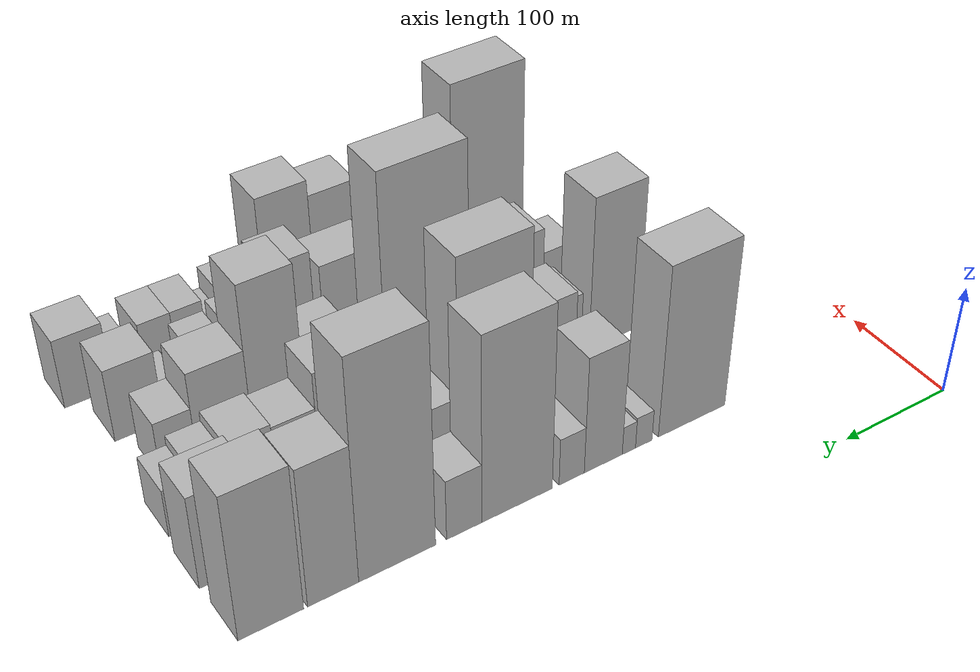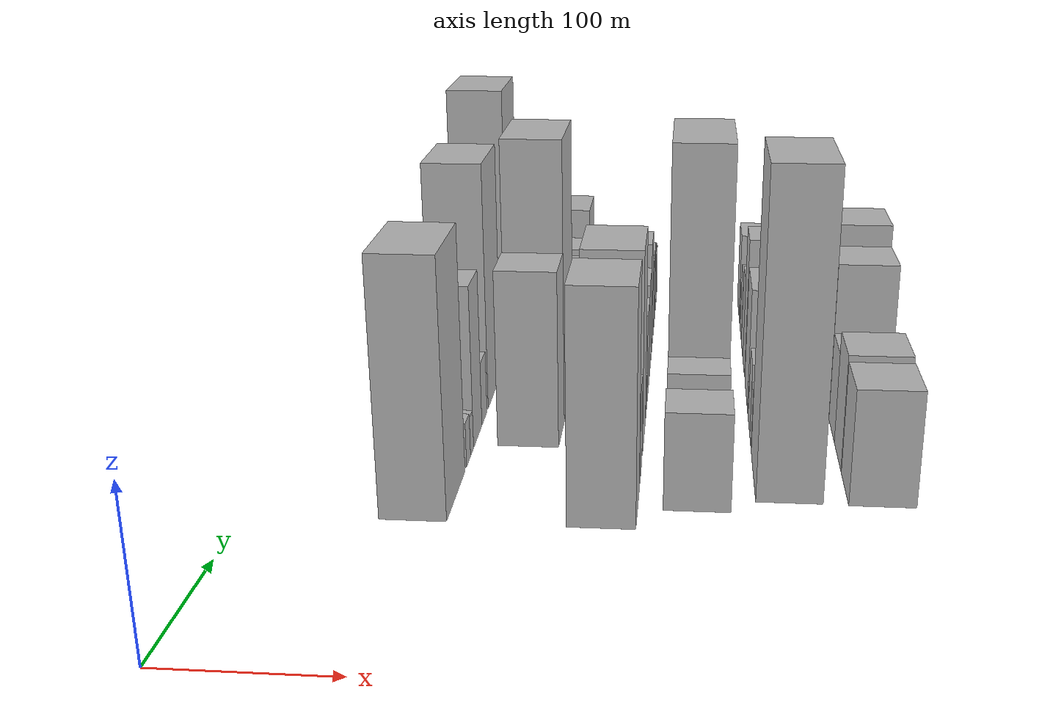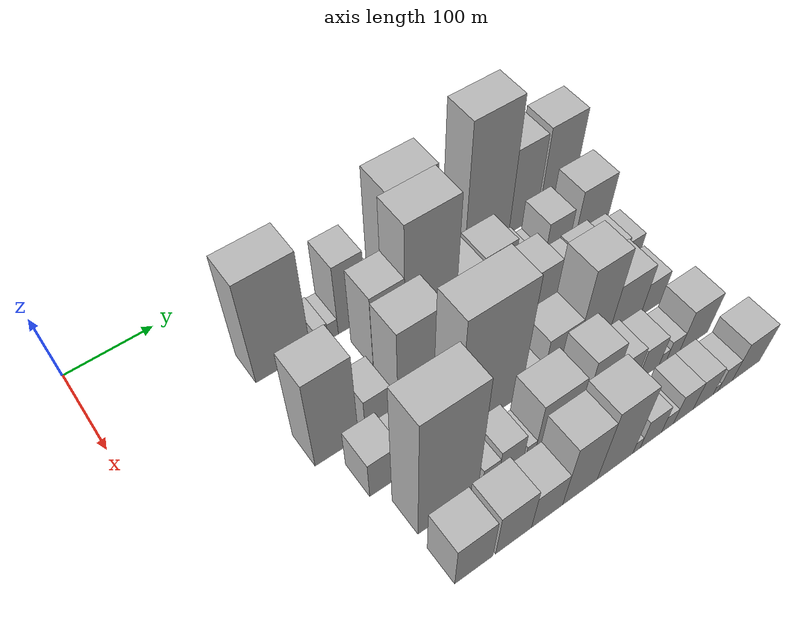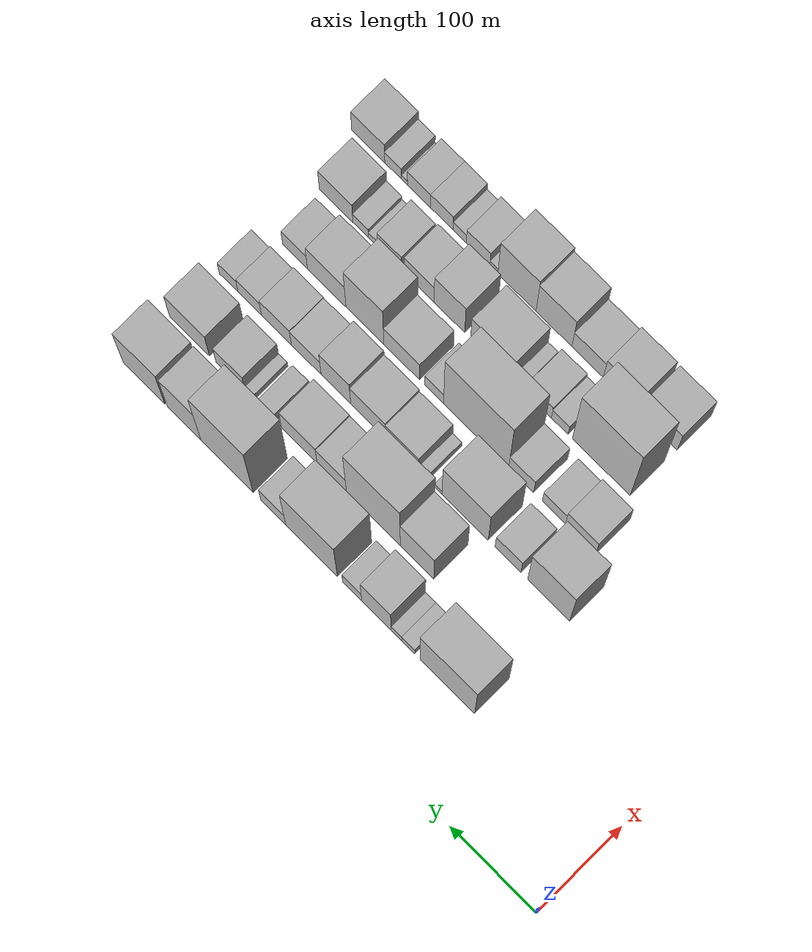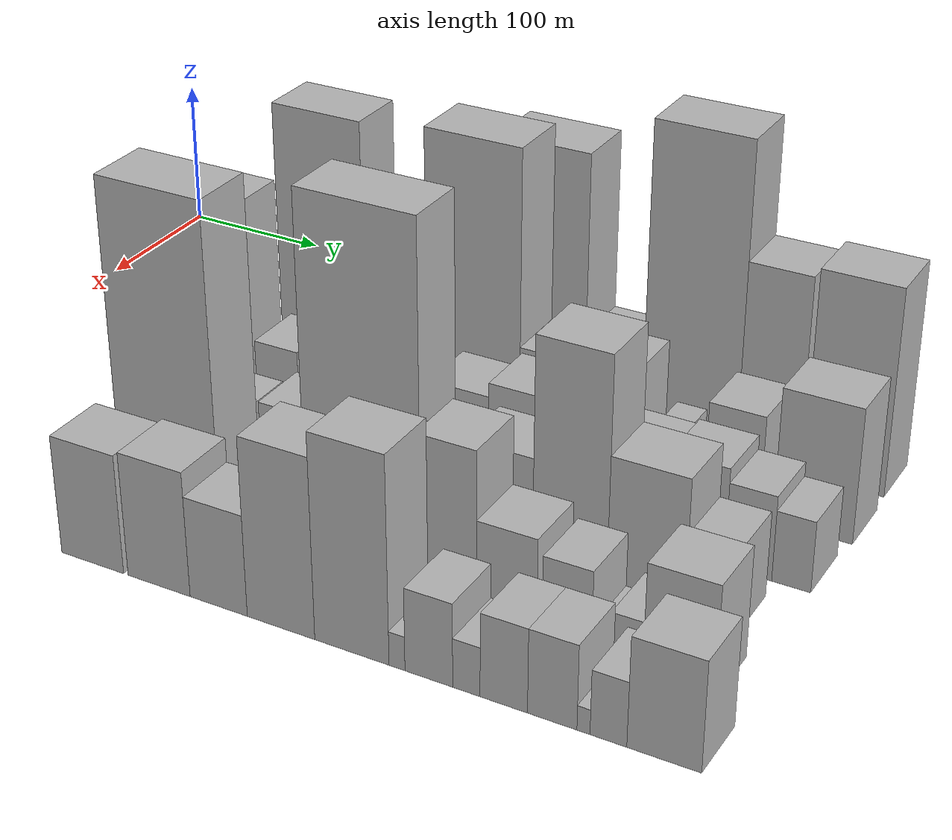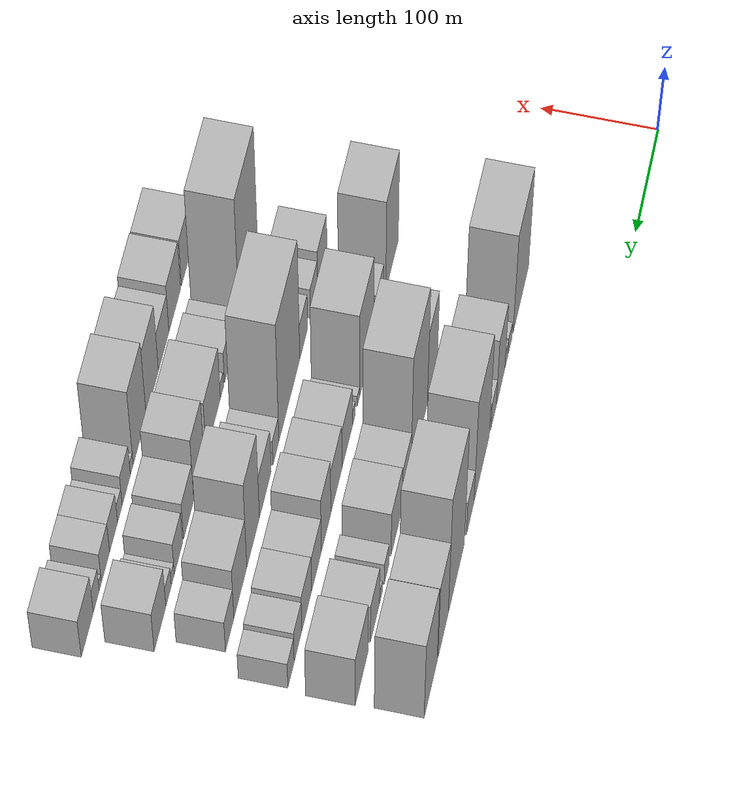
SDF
<sdf version="1.6">
 <world name="default">
  <model name="building_28">
   <static>1</static>
   <pose>100.0000 183.2015 0 0.000000 0.000000 0.000000</pose>
   <link name="link">
    <pose>0 0 81.00 0 0 0</pose>
    <collision name="collision"><geometry><box><size>40.0000 63.8877 162.0000</size></box></geometry></collision>
    <visual name="visual">
     <cast_shadows>0</cast_shadows>
     <geometry><box><size>40.0000 63.8877 162.0000</size></box></geometry>
     <material>
      <script>
       <uri>model://HANNAS_wall/materials/scripts</uri>
       <uri>model://HANNAS_wall/materials/textures</uri>
       <name>vrc/HANNAS_wall</name>
      </script>
     </material>
    </visual>
   </link>
  </model>
  <model name="building_29">
   <static>1</static>
   <pose>100.0000 228.8437 0 0.000000 0.000000 0.000000</pose>
   <link name="link">
    <pose>0 0 15.00 0 0 0</pose>
    <collision name="collision"><geometry><box><size>40.0000 15.3966 30.0000</size></box></geometry></collision>
    <visual name="visual">
     <cast_shadows>0</cast_shadows>
     <geometry><box><size>40.0000 15.3966 30.0000</size></box></geometry>
     <material>
      <script>
       <uri>model://HANNAS_wall/materials/scripts</uri>
       <uri>model://HANNAS_wall/materials/textures</uri>
       <name>vrc/HANNAS_wall</name>
      </script>
     </material>
    </visual>
   </link>
  </model>
  <model name="building_30">
   <static>1</static>
   <pose>100.0000 242.6706 0 0.000000 0.000000 0.000000</pose>
   <link name="link">
    <pose>0 0 13.50 0 0 0</pose>
    <collision name="collision"><geometry><box><size>40.0000 12.2572 27.0000</size></box></geometry></collision>
    <visual name="visual">
     <cast_shadows>0</cast_shadows>
     <geometry><box><size>40.0000 12.2572 27.0000</size></box></geometry>
     <material>
      <script>
       <uri>model://HANNAS_wall/materials/scripts</uri>
       <uri>model://HANNAS_wall/materials/textures</uri>
       <name>vrc/HANNAS_wall</name>
      </script>
     </material>
    </visual>
   </link>
  </model>
  <model name="building_31">
   <static>1</static>
   <pose>100.0000 266.0972 0 0.000000 0.000000 0.000000</pose>
   <link name="link">
    <pose>0 0 55.50 0 0 0</pose>
    <collision name="collision"><geometry><box><size>40.0000 34.5961 111.0000</size></box></geometry></collision>
    <visual name="visual">
     <cast_shadows>0</cast_shadows>
     <geometry><box><size>40.0000 34.5961 111.0000</size></box></geometry>
     <material>
      <script>
       <uri>model://HANNAS_wall/materials/scripts</uri>
       <uri>model://HANNAS_wall/materials/textures</uri>
       <name>vrc/HANNAS_wall</name>
      </script>
     </material>
    </visual>
   </link>
  </model>
  <model name="building_32">
   <static>1</static>
   <pose>100.0000 294.6586 0 0.000000 0.000000 0.000000</pose>
   <link name="link">
    <pose>0 0 22.50 0 0 0</pose>
    <collision name="collision"><geometry><box><size>40.0000 22.5267 45.0000</size></box></geometry></collision>
    <visual name="visual">
     <cast_shadows>0</cast_shadows>
     <geometry><box><size>40.0000 22.5267 45.0000</size></box></geometry>
     <material>
      <script>
       <uri>model://HANNAS_wall/materials/scripts</uri>
       <uri>model://HANNAS_wall/materials/textures</uri>
       <name>vrc/HANNAS_wall</name>
      </script>
     </material>
    </visual>
   </link>
  </model>
  <model name="building_33">
   <static>1</static>
   <pose>100.0000 342.3080 0 0.000000 0.000000 0.000000</pose>
   <link name="link">
    <pose>0 0 87.00 0 0 0</pose>
    <collision name="collision"><geometry><box><size>40.0000 60.7721 174.0000</size></box></geometry></collision>
    <visual name="visual">
     <cast_shadows>0</cast_shadows>
     <geometry><box><size>40.0000 60.7721 174.0000</size></box></geometry>
     <material>
      <script>
       <uri>model://HANNAS_wall/materials/scripts</uri>
       <uri>model://HANNAS_wall/materials/textures</uri>
       <name>vrc/HANNAS_wall</name>
      </script>
     </material>
    </visual>
   </link>
  </model>
  <model name="building_34">
   <static>1</static>
   <pose>100.0000 387.5385 0 0.000000 0.000000 0.000000</pose>
   <link name="link">
    <pose>0 0 28.50 0 0 0</pose>
    <collision name="collision"><geometry><box><size>40.0000 29.6889 57.0000</size></box></geometry></collision>
    <visual name="visual">
     <cast_shadows>0</cast_shadows>
     <geometry><box><size>40.0000 29.6889 57.0000</size></box></geometry>
     <material>
      <script>
       <uri>model://HANNAS_wall/materials/scripts</uri>
       <uri>model://HANNAS_wall/materials/textures</uri>
       <name>vrc/HANNAS_wall</name>
      </script>
     </material>
    </visual>
   </link>
  </model>
  <model name="building_35">
   <static>1</static>
   <pose>100.0000 442.3553 0 0.000000 0.000000 0.000000</pose>
   <link name="link">
    <pose>0 0 102.00 0 0 0</pose>
    <collision name="collision"><geometry><box><size>40.0000 61.9446 204.0000</size></box></geometry></collision>
    <visual name="visual">
     <cast_shadows>0</cast_shadows>
     <geometry><box><size>40.0000 61.9446 204.0000</size></box></geometry>
     <material>
      <script>
       <uri>model://HANNAS_wall/materials/scripts</uri>
       <uri>model://HANNAS_wall/materials/textures</uri>
       <name>vrc/HANNAS_wall</name>
      </script>
     </material>
    </visual>
   </link>
  </model>
  <model name="building_36">
   <static>1</static>
   <pose>100.0000 493.2041 0 0.000000 0.000000 0.000000</pose>
   <link name="link">
    <pose>0 0 64.50 0 0 0</pose>
    <collision name="collision"><geometry><box><size>40.0000 39.7531 129.0000</size></box></geometry></collision>
    <visual name="visual">
     <cast_shadows>0</cast_shadows>
     <geometry><box><size>40.0000 39.7531 129.0000</size></box></geometry>
     <material>
      <script>
       <uri>model://HANNAS_wall/materials/scripts</uri>
       <uri>model://HANNAS_wall/materials/textures</uri>
       <name>vrc/HANNAS_wall</name>
      </script>
     </material>
    </visual>
   </link>
  </model>
  <model name="building_37">
   <static>1</static>
   <pose>100.0000 540.7770 0 0.000000 0.000000 0.000000</pose>
   <link name="link">
    <pose>0 0 67.50 0 0 0</pose>
    <collision name="collision"><geometry><box><size>40.0000 49.3926 135.0000</size></box></geometry></collision>
    <visual name="visual">
     <cast_shadows>0</cast_shadows>
     <geometry><box><size>40.0000 49.3926 135.0000</size></box></geometry>
     <material>
      <script>
       <uri>model://HANNAS_wall/materials/scripts</uri>
       <uri>model://HANNAS_wall/materials/textures</uri>
       <name>vrc/HANNAS_wall</name>
      </script>
     </material>
    </visual>
   </link>
  </model>
  <model name="building_87">
   <static>1</static>
   <pose>155.0000 273.7556 0 0.000000 0.000000 0.000000</pose>
   <link name="link">
    <pose>0 0 60.00 0 0 0</pose>
    <collision name="collision"><geometry><box><size>40.0000 39.2226 120.0000</size></box></geometry></collision>
    <visual name="visual">
     <cast_shadows>0</cast_shadows>
     <geometry><box><size>40.0000 39.2226 120.0000</size></box></geometry>
     <material>
      <script>
       <uri>model://HANNAS_wall/materials/scripts</uri>
       <uri>model://HANNAS_wall/materials/textures</uri>
       <name>vrc/HANNAS_wall</name>
      </script>
     </material>
    </visual>
   </link>
  </model>
  <model name="building_88">
   <static>1</static>
   <pose>155.0000 325.0575 0 0.000000 0.000000 0.000000</pose>
   <link name="link">
    <pose>0 0 97.50 0 0 0</pose>
    <collision name="collision"><geometry><box><size>40.0000 63.3811 195.0000</size></box></geometry></collision>
    <visual name="visual">
     <cast_shadows>0</cast_shadows>
     <geometry><box><size>40.0000 63.3811 195.0000</size></box></geometry>
     <material>
      <script>
       <uri>model://HANNAS_wall/materials/scripts</uri>
       <uri>model://HANNAS_wall/materials/textures</uri>
       <name>vrc/HANNAS_wall</name>
      </script>
     </material>
    </visual>
   </link>
  </model>
  <model name="building_89">
   <static>1</static>
   <pose>155.0000 374.1225 0 0.000000 0.000000 0.000000</pose>
   <link name="link">
    <pose>0 0 34.50 0 0 0</pose>
    <collision name="collision"><geometry><box><size>40.0000 34.7489 69.0000</size></box></geometry></collision>
    <visual name="visual">
     <cast_shadows>0</cast_shadows>
     <geometry><box><size>40.0000 34.7489 69.0000</size></box></geometry>
     <material>
      <script>
       <uri>model://HANNAS_wall/materials/scripts</uri>
       <uri>model://HANNAS_wall/materials/textures</uri>
       <name>vrc/HANNAS_wall</name>
      </script>
     </material>
    </visual>
   </link>
  </model>
  <model name="building_90">
   <static>1</static>
   <pose>155.0000 412.5761 0 0.000000 0.000000 0.000000</pose>
   <link name="link">
    <pose>0 0 37.50 0 0 0</pose>
    <collision name="collision"><geometry><box><size>40.0000 42.1584 75.0000</size></box></geometry></collision>
    <visual name="visual">
     <cast_shadows>0</cast_shadows>
     <geometry><box><size>40.0000 42.1584 75.0000</size></box></geometry>
     <material>
      <script>
       <uri>model://HANNAS_wall/materials/scripts</uri>
       <uri>model://HANNAS_wall/materials/textures</uri>
       <name>vrc/HANNAS_wall</name>
      </script>
     </material>
    </visual>
   </link>
  </model>
  <model name="building_91">
   <static>1</static>
   <pose>155.0000 450.0210 0 0.000000 0.000000 0.000000</pose>
   <link name="link">
    <pose>0 0 18.00 0 0 0</pose>
    <collision name="collision"><geometry><box><size>40.0000 18.7314 36.0000</size></box></geometry></collision>
    <visual name="visual">
     <cast_shadows>0</cast_shadows>
     <geometry><box><size>40.0000 18.7314 36.0000</size></box></geometry>
     <material>
      <script>
       <uri>model://HANNAS_wall/materials/scripts</uri>
       <uri>model://HANNAS_wall/materials/textures</uri>
       <name>vrc/HANNAS_wall</name>
      </script>
     </material>
    </visual>
   </link>
  </model>
  <model name="building_92">
   <static>1</static>
   <pose>155.0000 471.5503 0 0.000000 0.000000 0.000000</pose>
   <link name="link">
    <pose>0 0 10.50 0 0 0</pose>
    <collision name="collision"><geometry><box><size>40.0000 10.3272 21.0000</size></box></geometry></collision>
    <visual name="visual">
     <cast_shadows>0</cast_shadows>
     <geometry><box><size>40.0000 10.3272 21.0000</size></box></geometry>
     <material>
      <script>
       <uri>model://HANNAS_wall/materials/scripts</uri>
       <uri>model://HANNAS_wall/materials/textures</uri>
       <name>vrc/HANNAS_wall</name>
      </script>
     </material>
    </visual>
   </link>
  </model>
  <model name="building_93">
   <static>1</static>
   <pose>155.0000 493.9384 0 0.000000 0.000000 0.000000</pose>
   <link name="link">
    <pose>0 0 33.00 0 0 0</pose>
    <collision name="collision"><geometry><box><size>40.0000 34.4488 66.0000</size></box></geometry></collision>
    <visual name="visual">
     <cast_shadows>0</cast_shadows>
     <geometry><box><size>40.0000 34.4488 66.0000</size></box></geometry>
     <material>
      <script>
       <uri>model://HANNAS_wall/materials/scripts</uri>
       <uri>model://HANNAS_wall/materials/textures</uri>
       <name>vrc/HANNAS_wall</name>
      </script>
     </material>
    </visual>
   </link>
  </model>
  <model name="building_94">
   <static>1</static>
   <pose>155.0000 542.9201 0 0.000000 0.000000 0.000000</pose>
   <link name="link">
    <pose>0 0 43.50 0 0 0</pose>
    <collision name="collision"><geometry><box><size>40.0000 47.5147 87.0000</size></box></geometry></collision>
    <visual name="visual">
     <cast_shadows>0</cast_shadows>
     <geometry><box><size>40.0000 47.5147 87.0000</size></box></geometry>
     <material>
      <script>
       <uri>model://HANNAS_wall/materials/scripts</uri>
       <uri>model://HANNAS_wall/materials/textures</uri>
       <name>vrc/HANNAS_wall</name>
      </script>
     </material>
    </visual>
   </link>
  </model>
  <model name="building_135">
   <static>1</static>
   <pose>210.0000 174.5492 0 0.000000 0.000000 0.000000</pose>
   <link name="link">
    <pose>0 0 73.50 0 0 0</pose>
    <collision name="collision"><geometry><box><size>40.0000 49.1016 147.0000</size></box></geometry></collision>
    <visual name="visual">
     <cast_shadows>0</cast_shadows>
     <geometry><box><size>40.0000 49.1016 147.0000</size></box></geometry>
     <material>
      <script>
       <uri>model://HANNAS_wall/materials/scripts</uri>
       <uri>model://HANNAS_wall/materials/textures</uri>
       <name>vrc/HANNAS_wall</name>
      </script>
     </material>
    </visual>
   </link>
  </model>
  <model name="building_136">
   <static>1</static>
   <pose>210.0000 222.1670 0 0.000000 0.000000 0.000000</pose>
   <link name="link">
    <pose>0 0 30.00 0 0 0</pose>
    <collision name="collision"><geometry><box><size>40.0000 30.1342 60.0000</size></box></geometry></collision>
    <visual name="visual">
     <cast_shadows>0</cast_shadows>
     <geometry><box><size>40.0000 30.1342 60.0000</size></box></geometry>
     <material>
      <script>
       <uri>model://HANNAS_wall/materials/scripts</uri>
       <uri>model://HANNAS_wall/materials/textures</uri>
       <name>vrc/HANNAS_wall</name>
      </script>
     </material>
    </visual>
   </link>
  </model>
  <model name="building_137">
   <static>1</static>
   <pose>210.0000 272.4114 0 0.000000 0.000000 0.000000</pose>
   <link name="link">
    <pose>0 0 69.00 0 0 0</pose>
    <collision name="collision"><geometry><box><size>40.0000 54.3545 138.0000</size></box></geometry></collision>
    <visual name="visual">
     <cast_shadows>0</cast_shadows>
     <geometry><box><size>40.0000 54.3545 138.0000</size></box></geometry>
     <material>
      <script>
       <uri>model://HANNAS_wall/materials/scripts</uri>
       <uri>model://HANNAS_wall/materials/textures</uri>
       <name>vrc/HANNAS_wall</name>
      </script>
     </material>
    </visual>
   </link>
  </model>
  <model name="building_138">
   <static>1</static>
   <pose>210.0000 303.9661 0 0.000000 0.000000 0.000000</pose>
   <link name="link">
    <pose>0 0 9.00 0 0 0</pose>
    <collision name="collision"><geometry><box><size>40.0000 8.7550 18.0000</size></box></geometry></collision>
    <visual name="visual">
     <cast_shadows>0</cast_shadows>
     <geometry><box><size>40.0000 8.7550 18.0000</size></box></geometry>
     <material>
      <script>
       <uri>model://HANNAS_wall/materials/scripts</uri>
       <uri>model://HANNAS_wall/materials/textures</uri>
       <name>vrc/HANNAS_wall</name>
      </script>
     </material>
    </visual>
   </link>
  </model>
  <model name="building_139">
   <static>1</static>
   <pose>210.0000 321.7002 0 0.000000 0.000000 0.000000</pose>
   <link name="link">
    <pose>0 0 12.00 0 0 0</pose>
    <collision name="collision"><geometry><box><size>40.0000 10.7131 24.0000</size></box></geometry></collision>
    <visual name="visual">
     <cast_shadows>0</cast_shadows>
     <geometry><box><size>40.0000 10.7131 24.0000</size></box></geometry>
     <material>
      <script>
       <uri>model://HANNAS_wall/materials/scripts</uri>
       <uri>model://HANNAS_wall/materials/textures</uri>
       <name>vrc/HANNAS_wall</name>
      </script>
     </material>
    </visual>
   </link>
  </model>
  <model name="building_140">
   <static>1</static>
   <pose>210.0000 346.5450 0 0.000000 0.000000 0.000000</pose>
   <link name="link">
    <pose>0 0 33.00 0 0 0</pose>
    <collision name="collision"><geometry><box><size>40.0000 38.9765 66.0000</size></box></geometry></collision>
    <visual name="visual">
     <cast_shadows>0</cast_shadows>
     <geometry><box><size>40.0000 38.9765 66.0000</size></box></geometry>
     <material>
      <script>
       <uri>model://HANNAS_wall/materials/scripts</uri>
       <uri>model://HANNAS_wall/materials/textures</uri>
       <name>vrc/HANNAS_wall</name>
      </script>
     </material>
    </visual>
   </link>
  </model>
  <model name="building_141">
   <static>1</static>
   <pose>210.0000 386.6026 0 0.000000 0.000000 0.000000</pose>
   <link name="link">
    <pose>0 0 37.50 0 0 0</pose>
    <collision name="collision"><geometry><box><size>40.0000 41.1388 75.0000</size></box></geometry></collision>
    <visual name="visual">
     <cast_shadows>0</cast_shadows>
     <geometry><box><size>40.0000 41.1388 75.0000</size></box></geometry>
     <material>
      <script>
       <uri>model://HANNAS_wall/materials/scripts</uri>
       <uri>model://HANNAS_wall/materials/textures</uri>
       <name>vrc/HANNAS_wall</name>
      </script>
     </material>
    </visual>
   </link>
  </model>
  <model name="building_142">
   <static>1</static>
   <pose>210.0000 424.6986 0 0.000000 0.000000 0.000000</pose>
   <link name="link">
    <pose>0 0 46.50 0 0 0</pose>
    <collision name="collision"><geometry><box><size>40.0000 35.0533 93.0000</size></box></geometry></collision>
    <visual name="visual">
     <cast_shadows>0</cast_shadows>
     <geometry><box><size>40.0000 35.0533 93.0000</size></box></geometry>
     <material>
      <script>
       <uri>model://HANNAS_wall/materials/scripts</uri>
       <uri>model://HANNAS_wall/materials/textures</uri>
       <name>vrc/HANNAS_wall</name>
      </script>
     </material>
    </visual>
   </link>
  </model>
  <model name="building_143">
   <static>1</static>
   <pose>210.0000 459.9254 0 0.000000 0.000000 0.000000</pose>
   <link name="link">
    <pose>0 0 30.00 0 0 0</pose>
    <collision name="collision"><geometry><box><size>40.0000 35.4003 60.0000</size></box></geometry></collision>
    <visual name="visual">
     <cast_shadows>0</cast_shadows>
     <geometry><box><size>40.0000 35.4003 60.0000</size></box></geometry>
     <material>
      <script>
       <uri>model://HANNAS_wall/materials/scripts</uri>
       <uri>model://HANNAS_wall/materials/textures</uri>
       <name>vrc/HANNAS_wall</name>
      </script>
     </material>
    </visual>
   </link>
  </model>
  <model name="building_144">
   <static>1</static>
   <pose>210.0000 495.3874 0 0.000000 0.000000 0.000000</pose>
   <link name="link">
    <pose>0 0 31.50 0 0 0</pose>
    <collision name="collision"><geometry><box><size>40.0000 35.5236 63.0000</size></box></geometry></collision>
    <visual name="visual">
     <cast_shadows>0</cast_shadows>
     <geometry><box><size>40.0000 35.5236 63.0000</size></box></geometry>
     <material>
      <script>
       <uri>model://HANNAS_wall/materials/scripts</uri>
       <uri>model://HANNAS_wall/materials/textures</uri>
       <name>vrc/HANNAS_wall</name>
      </script>
     </material>
    </visual>
   </link>
  </model>
  <model name="building_145">
   <static>1</static>
   <pose>210.0000 527.0077 0 0.000000 0.000000 0.000000</pose>
   <link name="link">
    <pose>0 0 27.00 0 0 0</pose>
    <collision name="collision"><geometry><box><size>40.0000 27.7169 54.0000</size></box></geometry></collision>
    <visual name="visual">
     <cast_shadows>0</cast_shadows>
     <geometry><box><size>40.0000 27.7169 54.0000</size></box></geometry>
     <material>
      <script>
       <uri>model://HANNAS_wall/materials/scripts</uri>
       <uri>model://HANNAS_wall/materials/textures</uri>
       <name>vrc/HANNAS_wall</name>
      </script>
     </material>
    </visual>
   </link>
  </model>
  <model name="building_146">
   <static>1</static>
   <pose>210.0000 552.1221 0 0.000000 0.000000 0.000000</pose>
   <link name="link">
    <pose>0 0 22.50 0 0 0</pose>
    <collision name="collision"><geometry><box><size>40.0000 22.5119 45.0000</size></box></geometry></collision>
    <visual name="visual">
     <cast_shadows>0</cast_shadows>
     <geometry><box><size>40.0000 22.5119 45.0000</size></box></geometry>
     <material>
      <script>
       <uri>model://HANNAS_wall/materials/scripts</uri>
       <uri>model://HANNAS_wall/materials/textures</uri>
       <name>vrc/HANNAS_wall</name>
      </script>
     </material>
    </visual>
   </link>
  </model>
  <model name="building_190">
   <static>1</static>
   <pose>265.0000 191.7337 0 0.000000 0.000000 0.000000</pose>
   <link name="link">
    <pose>0 0 31.50 0 0 0</pose>
    <collision name="collision"><geometry><box><size>40.0000 35.4533 63.0000</size></box></geometry></collision>
    <visual name="visual">
     <cast_shadows>0</cast_shadows>
     <geometry><box><size>40.0000 35.4533 63.0000</size></box></geometry>
     <material>
      <script>
       <uri>model://HANNAS_wall/materials/scripts</uri>
       <uri>model://HANNAS_wall/materials/textures</uri>
       <name>vrc/HANNAS_wall</name>
      </script>
     </material>
    </visual>
   </link>
  </model>
  <model name="building_191">
   <static>1</static>
   <pose>265.0000 223.1276 0 0.000000 0.000000 0.000000</pose>
   <link name="link">
    <pose>0 0 24.00 0 0 0</pose>
    <collision name="collision"><geometry><box><size>40.0000 27.3347 48.0000</size></box></geometry></collision>
    <visual name="visual">
     <cast_shadows>0</cast_shadows>
     <geometry><box><size>40.0000 27.3347 48.0000</size></box></geometry>
     <material>
      <script>
       <uri>model://HANNAS_wall/materials/scripts</uri>
       <uri>model://HANNAS_wall/materials/textures</uri>
       <name>vrc/HANNAS_wall</name>
      </script>
     </material>
    </visual>
   </link>
  </model>
  <model name="building_192">
   <static>1</static>
   <pose>265.0000 261.4371 0 0.000000 0.000000 0.000000</pose>
   <link name="link">
    <pose>0 0 28.50 0 0 0</pose>
    <collision name="collision"><geometry><box><size>40.0000 29.2843 57.0000</size></box></geometry></collision>
    <visual name="visual">
     <cast_shadows>0</cast_shadows>
     <geometry><box><size>40.0000 29.2843 57.0000</size></box></geometry>
     <material>
      <script>
       <uri>model://HANNAS_wall/materials/scripts</uri>
       <uri>model://HANNAS_wall/materials/textures</uri>
       <name>vrc/HANNAS_wall</name>
      </script>
     </material>
    </visual>
   </link>
  </model>
  <model name="building_193">
   <static>1</static>
   <pose>265.0000 314.4765 0 0.000000 0.000000 0.000000</pose>
   <link name="link">
    <pose>0 0 99.00 0 0 0</pose>
    <collision name="collision"><geometry><box><size>40.0000 76.7944 198.0000</size></box></geometry></collision>
    <visual name="visual">
     <cast_shadows>0</cast_shadows>
     <geometry><box><size>40.0000 76.7944 198.0000</size></box></geometry>
     <material>
      <script>
       <uri>model://HANNAS_wall/materials/scripts</uri>
       <uri>model://HANNAS_wall/materials/textures</uri>
       <name>vrc/HANNAS_wall</name>
      </script>
     </material>
    </visual>
   </link>
  </model>
  <model name="building_194">
   <static>1</static>
   <pose>265.0000 363.9447 0 0.000000 0.000000 0.000000</pose>
   <link name="link">
    <pose>0 0 21.00 0 0 0</pose>
    <collision name="collision"><geometry><box><size>40.0000 22.1420 42.0000</size></box></geometry></collision>
    <visual name="visual">
     <cast_shadows>0</cast_shadows>
     <geometry><box><size>40.0000 22.1420 42.0000</size></box></geometry>
     <material>
      <script>
       <uri>model://HANNAS_wall/materials/scripts</uri>
       <uri>model://HANNAS_wall/materials/textures</uri>
       <name>vrc/HANNAS_wall</name>
      </script>
     </material>
    </visual>
   </link>
  </model>
  <model name="building_195">
   <static>1</static>
   <pose>265.0000 402.1651 0 0.000000 0.000000 0.000000</pose>
   <link name="link">
    <pose>0 0 36.00 0 0 0</pose>
    <collision name="collision"><geometry><box><size>40.0000 42.2989 72.0000</size></box></geometry></collision>
    <visual name="visual">
     <cast_shadows>0</cast_shadows>
     <geometry><box><size>40.0000 42.2989 72.0000</size></box></geometry>
     <material>
      <script>
       <uri>model://HANNAS_wall/materials/scripts</uri>
       <uri>model://HANNAS_wall/materials/textures</uri>
       <name>vrc/HANNAS_wall</name>
      </script>
     </material>
    </visual>
   </link>
  </model>
  <model name="building_196">
   <static>1</static>
   <pose>265.0000 445.7698 0 0.000000 0.000000 0.000000</pose>
   <link name="link">
    <pose>0 0 73.50 0 0 0</pose>
    <collision name="collision"><geometry><box><size>40.0000 44.9106 147.0000</size></box></geometry></collision>
    <visual name="visual">
     <cast_shadows>0</cast_shadows>
     <geometry><box><size>40.0000 44.9106 147.0000</size></box></geometry>
     <material>
      <script>
       <uri>model://HANNAS_wall/materials/scripts</uri>
       <uri>model://HANNAS_wall/materials/textures</uri>
       <name>vrc/HANNAS_wall</name>
      </script>
     </material>
    </visual>
   </link>
  </model>
  <model name="building_197">
   <static>1</static>
   <pose>265.0000 491.0760 0 0.000000 0.000000 0.000000</pose>
   <link name="link">
    <pose>0 0 43.50 0 0 0</pose>
    <collision name="collision"><geometry><box><size>40.0000 45.7018 87.0000</size></box></geometry></collision>
    <visual name="visual">
     <cast_shadows>0</cast_shadows>
     <geometry><box><size>40.0000 45.7018 87.0000</size></box></geometry>
     <material>
      <script>
       <uri>model://HANNAS_wall/materials/scripts</uri>
       <uri>model://HANNAS_wall/materials/textures</uri>
       <name>vrc/HANNAS_wall</name>
      </script>
     </material>
    </visual>
   </link>
  </model>
  <model name="building_198">
   <static>1</static>
   <pose>265.0000 528.7028 0 0.000000 0.000000 0.000000</pose>
   <link name="link">
    <pose>0 0 27.00 0 0 0</pose>
    <collision name="collision"><geometry><box><size>40.0000 29.5518 54.0000</size></box></geometry></collision>
    <visual name="visual">
     <cast_shadows>0</cast_shadows>
     <geometry><box><size>40.0000 29.5518 54.0000</size></box></geometry>
     <material>
      <script>
       <uri>model://HANNAS_wall/materials/scripts</uri>
       <uri>model://HANNAS_wall/materials/textures</uri>
       <name>vrc/HANNAS_wall</name>
      </script>
     </material>
    </visual>
   </link>
  </model>
  <model name="building_241">
   <static>1</static>
   <pose>320.0000 222.2224 0 0.000000 0.000000 0.000000</pose>
   <link name="link">
    <pose>0 0 103.50 0 0 0</pose>
    <collision name="collision"><geometry><box><size>40.0000 67.6688 207.0000</size></box></geometry></collision>
    <visual name="visual">
     <cast_shadows>0</cast_shadows>
     <geometry><box><size>40.0000 67.6688 207.0000</size></box></geometry>
     <material>
      <script>
       <uri>model://HANNAS_wall/materials/scripts</uri>
       <uri>model://HANNAS_wall/materials/textures</uri>
       <name>vrc/HANNAS_wall</name>
      </script>
     </material>
    </visual>
   </link>
  </model>
  <model name="building_242">
   <static>1</static>
   <pose>320.0000 270.8882 0 0.000000 0.000000 0.000000</pose>
   <link name="link">
    <pose>0 0 19.50 0 0 0</pose>
    <collision name="collision"><geometry><box><size>40.0000 19.6628 39.0000</size></box></geometry></collision>
    <visual name="visual">
     <cast_shadows>0</cast_shadows>
     <geometry><box><size>40.0000 19.6628 39.0000</size></box></geometry>
     <material>
      <script>
       <uri>model://HANNAS_wall/materials/scripts</uri>
       <uri>model://HANNAS_wall/materials/textures</uri>
       <name>vrc/HANNAS_wall</name>
      </script>
     </material>
    </visual>
   </link>
  </model>
  <model name="building_243">
   <static>1</static>
   <pose>320.0000 295.5286 0 0.000000 0.000000 0.000000</pose>
   <link name="link">
    <pose>0 0 25.50 0 0 0</pose>
    <collision name="collision"><geometry><box><size>40.0000 29.6179 51.0000</size></box></geometry></collision>
    <visual name="visual">
     <cast_shadows>0</cast_shadows>
     <geometry><box><size>40.0000 29.6179 51.0000</size></box></geometry>
     <material>
      <script>
       <uri>model://HANNAS_wall/materials/scripts</uri>
       <uri>model://HANNAS_wall/materials/textures</uri>
       <name>vrc/HANNAS_wall</name>
      </script>
     </material>
    </visual>
   </link>
  </model>
  <model name="building_244">
   <static>1</static>
   <pose>320.0000 319.2719 0 0.000000 0.000000 0.000000</pose>
   <link name="link">
    <pose>0 0 12.00 0 0 0</pose>
    <collision name="collision"><geometry><box><size>40.0000 11.8687 24.0000</size></box></geometry></collision>
    <visual name="visual">
     <cast_shadows>0</cast_shadows>
     <geometry><box><size>40.0000 11.8687 24.0000</size></box></geometry>
     <material>
      <script>
       <uri>model://HANNAS_wall/materials/scripts</uri>
       <uri>model://HANNAS_wall/materials/textures</uri>
       <name>vrc/HANNAS_wall</name>
      </script>
     </material>
    </visual>
   </link>
  </model>
  <model name="building_245">
   <static>1</static>
   <pose>320.0000 350.5523 0 0.000000 0.000000 0.000000</pose>
   <link name="link">
    <pose>0 0 43.50 0 0 0</pose>
    <collision name="collision"><geometry><box><size>40.0000 50.6922 87.0000</size></box></geometry></collision>
    <visual name="visual">
     <cast_shadows>0</cast_shadows>
     <geometry><box><size>40.0000 50.6922 87.0000</size></box></geometry>
     <material>
      <script>
       <uri>model://HANNAS_wall/materials/scripts</uri>
       <uri>model://HANNAS_wall/materials/textures</uri>
       <name>vrc/HANNAS_wall</name>
      </script>
     </material>
    </visual>
   </link>
  </model>
  <model name="building_246">
   <static>1</static>
   <pose>320.0000 400.9805 0 0.000000 0.000000 0.000000</pose>
   <link name="link">
    <pose>0 0 52.50 0 0 0</pose>
    <collision name="collision"><geometry><box><size>40.0000 36.1642 105.0000</size></box></geometry></collision>
    <visual name="visual">
     <cast_shadows>0</cast_shadows>
     <geometry><box><size>40.0000 36.1642 105.0000</size></box></geometry>
     <material>
      <script>
       <uri>model://HANNAS_wall/materials/scripts</uri>
       <uri>model://HANNAS_wall/materials/textures</uri>
       <name>vrc/HANNAS_wall</name>
      </script>
     </material>
    </visual>
   </link>
  </model>
  <model name="building_247">
   <static>1</static>
   <pose>320.0000 436.9004 0 0.000000 0.000000 0.000000</pose>
   <link name="link">
    <pose>0 0 31.50 0 0 0</pose>
    <collision name="collision"><geometry><box><size>40.0000 35.6756 63.0000</size></box></geometry></collision>
    <visual name="visual">
     <cast_shadows>0</cast_shadows>
     <geometry><box><size>40.0000 35.6756 63.0000</size></box></geometry>
     <material>
      <script>
       <uri>model://HANNAS_wall/materials/scripts</uri>
       <uri>model://HANNAS_wall/materials/textures</uri>
       <name>vrc/HANNAS_wall</name>
      </script>
     </material>
    </visual>
   </link>
  </model>
  <model name="building_248">
   <static>1</static>
   <pose>320.0000 472.0773 0 0.000000 0.000000 0.000000</pose>
   <link name="link">
    <pose>0 0 27.00 0 0 0</pose>
    <collision name="collision"><geometry><box><size>40.0000 28.6782 54.0000</size></box></geometry></collision>
    <visual name="visual">
     <cast_shadows>0</cast_shadows>
     <geometry><box><size>40.0000 28.6782 54.0000</size></box></geometry>
     <material>
      <script>
       <uri>model://HANNAS_wall/materials/scripts</uri>
       <uri>model://HANNAS_wall/materials/textures</uri>
       <name>vrc/HANNAS_wall</name>
      </script>
     </material>
    </visual>
   </link>
  </model>
  <model name="building_249">
   <static>1</static>
   <pose>320.0000 491.6455 0 0.000000 0.000000 0.000000</pose>
   <link name="link">
    <pose>0 0 10.50 0 0 0</pose>
    <collision name="collision"><geometry><box><size>40.0000 10.4581 21.0000</size></box></geometry></collision>
    <visual name="visual">
     <cast_shadows>0</cast_shadows>
     <geometry><box><size>40.0000 10.4581 21.0000</size></box></geometry>
     <material>
      <script>
       <uri>model://HANNAS_wall/materials/scripts</uri>
       <uri>model://HANNAS_wall/materials/textures</uri>
       <name>vrc/HANNAS_wall</name>
      </script>
     </material>
    </visual>
   </link>
  </model>
  <model name="building_250">
   <static>1</static>
   <pose>320.0000 506.1434 0 0.000000 0.000000 0.000000</pose>
   <link name="link">
    <pose>0 0 16.50 0 0 0</pose>
    <collision name="collision"><geometry><box><size>40.0000 18.5376 33.0000</size></box></geometry></collision>
    <visual name="visual">
     <cast_shadows>0</cast_shadows>
     <geometry><box><size>40.0000 18.5376 33.0000</size></box></geometry>
     <material>
      <script>
       <uri>model://HANNAS_wall/materials/scripts</uri>
       <uri>model://HANNAS_wall/materials/textures</uri>
       <name>vrc/HANNAS_wall</name>
      </script>
     </material>
    </visual>
   </link>
  </model>
  <model name="building_251">
   <static>1</static>
   <pose>320.0000 535.4064 0 0.000000 0.000000 0.000000</pose>
   <link name="link">
    <pose>0 0 34.50 0 0 0</pose>
    <collision name="collision"><geometry><box><size>40.0000 39.9886 69.0000</size></box></geometry></collision>
    <visual name="visual">
     <cast_shadows>0</cast_shadows>
     <geometry><box><size>40.0000 39.9886 69.0000</size></box></geometry>
     <material>
      <script>
       <uri>model://HANNAS_wall/materials/scripts</uri>
       <uri>model://HANNAS_wall/materials/textures</uri>
       <name>vrc/HANNAS_wall</name>
      </script>
     </material>
    </visual>
   </link>
  </model>
  <model name="building_293">
   <static>1</static>
   <pose>375.0000 208.8114 0 0.000000 0.000000 0.000000</pose>
   <link name="link">
    <pose>0 0 37.50 0 0 0</pose>
    <collision name="collision"><geometry><box><size>40.0000 42.4092 75.0000</size></box></geometry></collision>
    <visual name="visual">
     <cast_shadows>0</cast_shadows>
     <geometry><box><size>40.0000 42.4092 75.0000</size></box></geometry>
     <material>
      <script>
       <uri>model://HANNAS_wall/materials/scripts</uri>
       <uri>model://HANNAS_wall/materials/textures</uri>
       <name>vrc/HANNAS_wall</name>
      </script>
     </material>
    </visual>
   </link>
  </model>
  <model name="building_294">
   <static>1</static>
   <pose>375.0000 253.6382 0 0.000000 0.000000 0.000000</pose>
   <link name="link">
    <pose>0 0 39.00 0 0 0</pose>
    <collision name="collision"><geometry><box><size>40.0000 41.2445 78.0000</size></box></geometry></collision>
    <visual name="visual">
     <cast_shadows>0</cast_shadows>
     <geometry><box><size>40.0000 41.2445 78.0000</size></box></geometry>
     <material>
      <script>
       <uri>model://HANNAS_wall/materials/scripts</uri>
       <uri>model://HANNAS_wall/materials/textures</uri>
       <name>vrc/HANNAS_wall</name>
      </script>
     </material>
    </visual>
   </link>
  </model>
  <model name="building_295">
   <static>1</static>
   <pose>375.0000 292.7339 0 0.000000 0.000000 0.000000</pose>
   <link name="link">
    <pose>0 0 31.50 0 0 0</pose>
    <collision name="collision"><geometry><box><size>40.0000 36.9469 63.0000</size></box></geometry></collision>
    <visual name="visual">
     <cast_shadows>0</cast_shadows>
     <geometry><box><size>40.0000 36.9469 63.0000</size></box></geometry>
     <material>
      <script>
       <uri>model://HANNAS_wall/materials/scripts</uri>
       <uri>model://HANNAS_wall/materials/textures</uri>
       <name>vrc/HANNAS_wall</name>
      </script>
     </material>
    </visual>
   </link>
  </model>
  <model name="building_296">
   <static>1</static>
   <pose>375.0000 332.3676 0 0.000000 0.000000 0.000000</pose>
   <link name="link">
    <pose>0 0 55.50 0 0 0</pose>
    <collision name="collision"><geometry><box><size>40.0000 42.3205 111.0000</size></box></geometry></collision>
    <visual name="visual">
     <cast_shadows>0</cast_shadows>
     <geometry><box><size>40.0000 42.3205 111.0000</size></box></geometry>
     <material>
      <script>
       <uri>model://HANNAS_wall/materials/scripts</uri>
       <uri>model://HANNAS_wall/materials/textures</uri>
       <name>vrc/HANNAS_wall</name>
      </script>
     </material>
    </visual>
   </link>
  </model>
  <model name="building_297">
   <static>1</static>
   <pose>375.0000 376.0397 0 0.000000 0.000000 0.000000</pose>
   <link name="link">
    <pose>0 0 63.00 0 0 0</pose>
    <collision name="collision"><geometry><box><size>40.0000 45.0237 126.0000</size></box></geometry></collision>
    <visual name="visual">
     <cast_shadows>0</cast_shadows>
     <geometry><box><size>40.0000 45.0237 126.0000</size></box></geometry>
     <material>
      <script>
       <uri>model://HANNAS_wall/materials/scripts</uri>
       <uri>model://HANNAS_wall/materials/textures</uri>
       <name>vrc/HANNAS_wall</name>
      </script>
     </material>
    </visual>
   </link>
  </model>
  <model name="building_298">
   <static>1</static>
   <pose>375.0000 403.2737 0 0.000000 0.000000 0.000000</pose>
   <link name="link">
    <pose>0 0 10.50 0 0 0</pose>
    <collision name="collision"><geometry><box><size>40.0000 9.4442 21.0000</size></box></geometry></collision>
    <visual name="visual">
     <cast_shadows>0</cast_shadows>
     <geometry><box><size>40.0000 9.4442 21.0000</size></box></geometry>
     <material>
      <script>
       <uri>model://HANNAS_wall/materials/scripts</uri>
       <uri>model://HANNAS_wall/materials/textures</uri>
       <name>vrc/HANNAS_wall</name>
      </script>
     </material>
    </visual>
   </link>
  </model>
  <model name="building_299">
   <static>1</static>
   <pose>375.0000 421.9536 0 0.000000 0.000000 0.000000</pose>
   <link name="link">
    <pose>0 0 25.50 0 0 0</pose>
    <collision name="collision"><geometry><box><size>40.0000 27.9156 51.0000</size></box></geometry></collision>
    <visual name="visual">
     <cast_shadows>0</cast_shadows>
     <geometry><box><size>40.0000 27.9156 51.0000</size></box></geometry>
     <material>
      <script>
       <uri>model://HANNAS_wall/materials/scripts</uri>
       <uri>model://HANNAS_wall/materials/textures</uri>
       <name>vrc/HANNAS_wall</name>
      </script>
     </material>
    </visual>
   </link>
  </model>
  <model name="building_300">
   <static>1</static>
   <pose>375.0000 443.7802 0 0.000000 0.000000 0.000000</pose>
   <link name="link">
    <pose>0 0 15.00 0 0 0</pose>
    <collision name="collision"><geometry><box><size>40.0000 15.7377 30.0000</size></box></geometry></collision>
    <visual name="visual">
     <cast_shadows>0</cast_shadows>
     <geometry><box><size>40.0000 15.7377 30.0000</size></box></geometry>
     <material>
      <script>
       <uri>model://HANNAS_wall/materials/scripts</uri>
       <uri>model://HANNAS_wall/materials/textures</uri>
       <name>vrc/HANNAS_wall</name>
      </script>
     </material>
    </visual>
   </link>
  </model>
  <model name="building_301">
   <static>1</static>
   <pose>375.0000 465.0606 0 0.000000 0.000000 0.000000</pose>
   <link name="link">
    <pose>0 0 25.50 0 0 0</pose>
    <collision name="collision"><geometry><box><size>40.0000 26.8231 51.0000</size></box></geometry></collision>
    <visual name="visual">
     <cast_shadows>0</cast_shadows>
     <geometry><box><size>40.0000 26.8231 51.0000</size></box></geometry>
     <material>
      <script>
       <uri>model://HANNAS_wall/materials/scripts</uri>
       <uri>model://HANNAS_wall/materials/textures</uri>
       <name>vrc/HANNAS_wall</name>
      </script>
     </material>
    </visual>
   </link>
  </model>
  <model name="building_302">
   <static>1</static>
   <pose>375.0000 492.1520 0 0.000000 0.000000 0.000000</pose>
   <link name="link">
    <pose>0 0 25.50 0 0 0</pose>
    <collision name="collision"><geometry><box><size>40.0000 27.3597 51.0000</size></box></geometry></collision>
    <visual name="visual">
     <cast_shadows>0</cast_shadows>
     <geometry><box><size>40.0000 27.3597 51.0000</size></box></geometry>
     <material>
      <script>
       <uri>model://HANNAS_wall/materials/scripts</uri>
       <uri>model://HANNAS_wall/materials/textures</uri>
       <name>vrc/HANNAS_wall</name>
      </script>
     </material>
    </visual>
   </link>
  </model>
  <model name="building_303">
   <static>1</static>
   <pose>375.0000 509.4058 0 0.000000 0.000000 0.000000</pose>
   <link name="link">
    <pose>0 0 7.50 0 0 0</pose>
    <collision name="collision"><geometry><box><size>40.0000 7.1479 15.0000</size></box></geometry></collision>
    <visual name="visual">
     <cast_shadows>0</cast_shadows>
     <geometry><box><size>40.0000 7.1479 15.0000</size></box></geometry>
     <material>
      <script>
       <uri>model://HANNAS_wall/materials/scripts</uri>
       <uri>model://HANNAS_wall/materials/textures</uri>
       <name>vrc/HANNAS_wall</name>
      </script>
     </material>
    </visual>
   </link>
  </model>
  <model name="building_304">
   <static>1</static>
   <pose>375.0000 522.9063 0 0.000000 0.000000 0.000000</pose>
   <link name="link">
    <pose>0 0 19.50 0 0 0</pose>
    <collision name="collision"><geometry><box><size>40.0000 19.8532 39.0000</size></box></geometry></collision>
    <visual name="visual">
     <cast_shadows>0</cast_shadows>
     <geometry><box><size>40.0000 19.8532 39.0000</size></box></geometry>
     <material>
      <script>
       <uri>model://HANNAS_wall/materials/scripts</uri>
       <uri>model://HANNAS_wall/materials/textures</uri>
       <name>vrc/HANNAS_wall</name>
      </script>
     </material>
    </visual>
   </link>
  </model>
  <model name="building_305">
   <static>1</static>
   <pose>375.0000 552.5864 0 0.000000 0.000000 0.000000</pose>
   <link name="link">
    <pose>0 0 33.00 0 0 0</pose>
    <collision name="collision"><geometry><box><size>40.0000 39.5070 66.0000</size></box></geometry></collision>
    <visual name="visual">
     <cast_shadows>0</cast_shadows>
     <geometry><box><size>40.0000 39.5070 66.0000</size></box></geometry>
     <material>
      <script>
       <uri>model://HANNAS_wall/materials/scripts</uri>
       <uri>model://HANNAS_wall/materials/textures</uri>
       <name>vrc/HANNAS_wall</name>
      </script>
     </material>
    </visual>
   </link>
  </model>
 </world>
</sdf>
